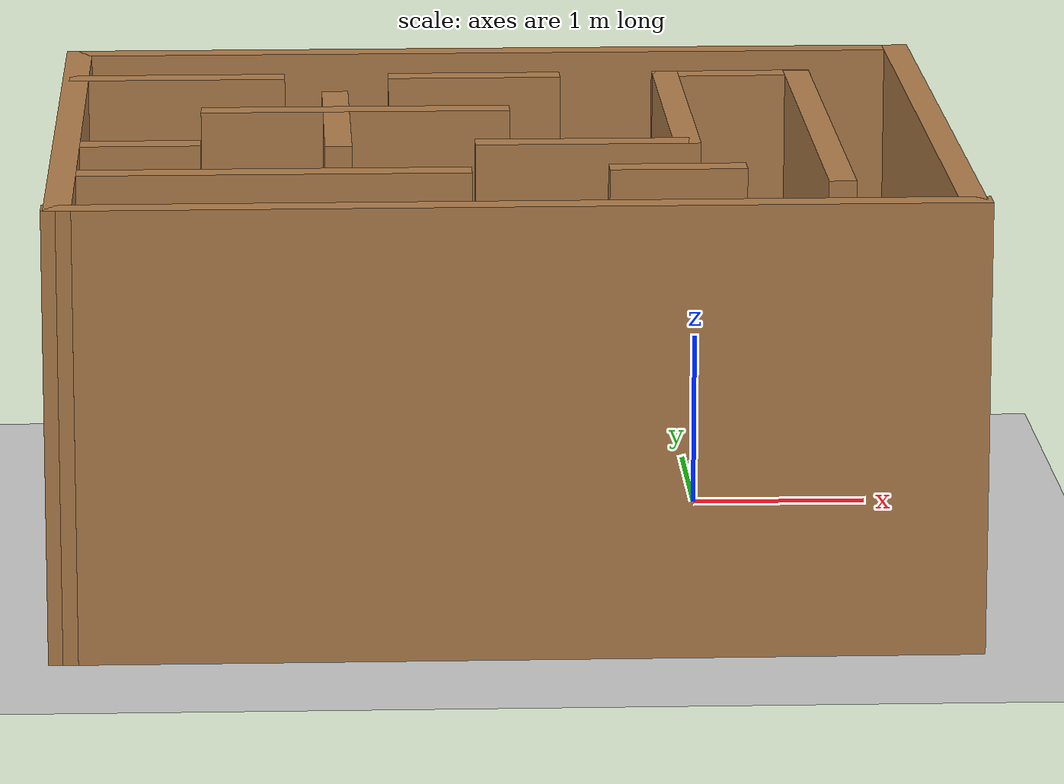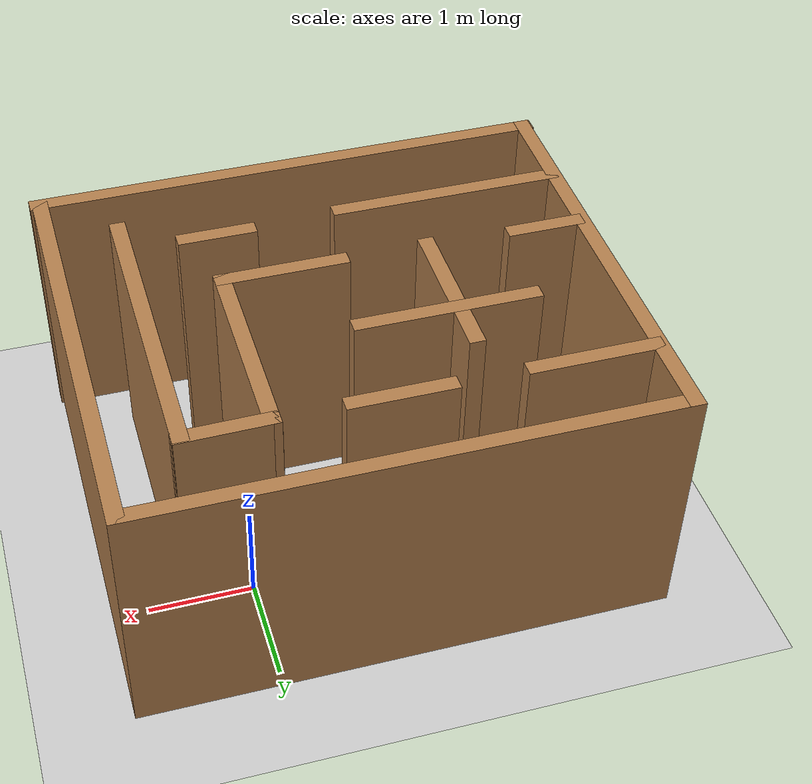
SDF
<sdf version="1.7">
 <world name="default">
  <scene><ambient>0.4 0.4 0.4 1</ambient><background>0.7 0.7 0.7 1</background><shadows>1</shadows></scene>
  <light name="sun" type="directional">
   <pose>0 0 10 0 -0 0</pose>
   <diffuse>0.8 0.8 0.8 1</diffuse>
   <specular>0.2 0.2 0.2 1</specular>
   <attenuation>
    <range>1000</range>
    <constant>0.9</constant>
    <linear>0.01</linear>
    <quadratic>0.001</quadratic>
   </attenuation>
   <direction>-0.5 0.1 -0.9</direction>
   <spot><inner_angle>0</inner_angle><outer_angle>0</outer_angle><falloff>0</falloff></spot>
  </light>
  <model name="ground_plane">
   <static>1</static>
   <link name="link">
    <collision name="collision">
     <geometry><plane><normal>0 0 1</normal><size>100 100</size></plane></geometry>
     <surface>
      <contact><collide_bitmask>65535</collide_bitmask></contact>
      <friction><ode><mu>100</mu><mu2>50</mu2></ode></friction>
     </surface>
    </collision>
    <visual name="visual">
     <cast_shadows>0</cast_shadows>
     <geometry><plane><normal>0 0 1</normal><size>100 100</size></plane></geometry>
     <material>
      <script><uri>file://media/materials/scripts/gazebo.material</uri><name>Gazebo/Grey</name></script>
     </material>
    </visual>
   </link>
  </model>
  <physics type="ode">
   <real_time_update_rate>1000</real_time_update_rate>
   <max_step_size>0.001</max_step_size>
   <real_time_factor>1</real_time_factor>
   <ode>
    <solver>
     <type>quick</type>
     <iters>150</iters>
     <precon_iters>0</precon_iters>
     <sor>1.4</sor>
     <use_dynamic_moi_rescaling>1</use_dynamic_moi_rescaling>
    </solver>
    <constraints>
     <cfm>1e-05</cfm>
     <erp>0.2</erp>
     <contact_max_correcting_vel>2000</contact_max_correcting_vel>
     <contact_surface_layer>0.01</contact_surface_layer>
    </constraints>
   </ode>
  </physics>
  <gravity>0 0 -9.8</gravity>
  <magnetic_field>6e-06 2.3e-05 -4.2e-05</magnetic_field>
  <atmosphere type="adiabatic"/>
  <spherical_coordinates>
   <surface_model>EARTH_WGS84</surface_model>
   <latitude_deg>0</latitude_deg>
   <longitude_deg>0</longitude_deg>
   <elevation>0</elevation>
   <heading_deg>0</heading_deg>
  </spherical_coordinates>
  <model name="TestMaze">
   <pose>-1.16718 -1.00605 0 0 -0 0</pose>
   <link name="Wall_13">
    <collision name="Wall_13_Collision">
     <geometry><box><size>5.04601 0.15 2.5</size></box></geometry>
     <pose>0 0 1.25 0 -0 0</pose>
    </collision>
    <visual name="Wall_13_Visual">
     <pose>0 0 1.25 0 -0 0</pose>
     <geometry><box><size>5.04601 0.15 2.5</size></box></geometry>
     <material>
      <script><uri>file://media/materials/scripts/gazebo.material</uri><name>Gazebo/Wood</name></script>
      <ambient>1 1 1 1</ambient>
     </material>
     <meta><layer>0</layer></meta>
    </visual>
    <pose>-0 -2.06913 0 0 -0 -3.13924</pose>
   </link>
   <link name="Wall_14">
    <collision name="Wall_14_Collision">
     <geometry><box><size>4.29951 0.15 2.5</size></box></geometry>
     <pose>0 0 1.25 0 -0 0</pose>
    </collision>
    <visual name="Wall_14_Visual">
     <pose>0 0 1.25 0 -0 0</pose>
     <geometry><box><size>4.29951 0.15 2.5</size></box></geometry>
     <material>
      <script><uri>file://media/materials/scripts/gazebo.material</uri><name>Gazebo/Wood</name></script>
      <ambient>1 1 1 1</ambient>
     </material>
     <meta><layer>0</layer></meta>
    </visual>
    <pose>-2.43075 -0.000159 0 0 -0 1.56803</pose>
   </link>
   <link name="Wall_21">
    <collision name="Wall_21_Collision">
     <geometry><box><size>1.25 0.15 2.5</size></box></geometry>
     <pose>0 0 1.25 0 -0 0</pose>
    </collision>
    <visual name="Wall_21_Visual">
     <pose>0 0 1.25 0 -0 0</pose>
     <geometry><box><size>1.25 0.15 2.5</size></box></geometry>
     <material>
      <script><uri>file://media/materials/scripts/gazebo.material</uri><name>Gazebo/Wood</name></script>
      <ambient>1 1 1 1</ambient>
     </material>
     <meta><layer>0</layer></meta>
    </visual>
    <pose>-1.83932 1.34296 0 0 -0 0</pose>
   </link>
   <link name="Wall_25">
    <collision name="Wall_25_Collision">
     <geometry><box><size>1 0.15 2.5</size></box></geometry>
     <pose>0 0 1.25 0 -0 0</pose>
    </collision>
    <visual name="Wall_25_Visual">
     <pose>0 0 1.25 0 -0 0</pose>
     <geometry><box><size>1 0.15 2.5</size></box></geometry>
     <material>
      <script><uri>file://media/materials/scripts/gazebo.material</uri><name>Gazebo/Wood</name></script>
      <ambient>1 1 1 1</ambient>
     </material>
     <meta><layer>0</layer></meta>
    </visual>
    <pose>-0.112824 1.34296 0 0 -0 0</pose>
   </link>
   <link name="Wall_27">
    <collision name="Wall_27_Collision">
     <geometry><box><size>0.9195 0.15 2.5</size></box></geometry>
     <pose>0 0 1.25 0 -0 0</pose>
    </collision>
    <visual name="Wall_27_Visual">
     <pose>0 0 1.25 0 -0 0</pose>
     <geometry><box><size>0.9195 0.15 2.5</size></box></geometry>
     <material>
      <script><uri>file://media/materials/scripts/gazebo.material</uri><name>Gazebo/Wood</name></script>
      <ambient>1 1 1 1</ambient>
     </material>
     <meta><layer>0</layer></meta>
    </visual>
    <pose>1.38793 1.34871 0 0 -0 0.014944</pose>
   </link>
   <link name="Wall_29">
    <collision name="Wall_29_Collision">
     <geometry><box><size>3 0.15 2.5</size></box></geometry>
     <pose>0 0 1.25 0 -0 0</pose>
    </collision>
    <visual name="Wall_29_Visual">
     <pose>0 0 1.25 0 -0 0</pose>
     <geometry><box><size>3 0.15 2.5</size></box></geometry>
     <material>
      <script><uri>file://media/materials/scripts/gazebo.material</uri><name>Gazebo/Wood</name></script>
      <ambient>1 1 1 1</ambient>
     </material>
     <meta><layer>0</layer></meta>
    </visual>
    <pose>1.77268 -0.082043 0 0 -0 -1.5708</pose>
   </link>
   <link name="Wall_31">
    <collision name="Wall_31_Collision">
     <geometry><box><size>2 0.15 2.5</size></box></geometry>
     <pose>0 0 1.25 0 -0 0</pose>
    </collision>
    <visual name="Wall_31_Visual">
     <pose>0 0 1.25 0 -0 0</pose>
     <geometry><box><size>2 0.15 2.5</size></box></geometry>
     <material>
      <script><uri>file://media/materials/scripts/gazebo.material</uri><name>Gazebo/Wood</name></script>
      <ambient>1 1 1 1</ambient>
     </material>
     <meta><layer>0</layer></meta>
    </visual>
    <pose>1.00318 0.417957 0 0 -0 -1.5708</pose>
   </link>
   <link name="Wall_38">
    <collision name="Wall_38_Collision">
     <geometry><box><size>1.5 0.15 2.5</size></box></geometry>
     <pose>0 0 1.25 0 -0 0</pose>
    </collision>
    <visual name="Wall_38_Visual">
     <pose>0 0 1.25 0 -0 0</pose>
     <geometry><box><size>1.5 0.15 2.5</size></box></geometry>
     <material>
      <script><uri>file://media/materials/scripts/gazebo.material</uri><name>Gazebo/Wood</name></script>
      <ambient>1 1 1 1</ambient>
     </material>
     <meta><layer>0</layer></meta>
    </visual>
    <pose>-0.928824 0.161957 0 0 -0 -1.5708</pose>
   </link>
   <link name="Wall_40">
    <collision name="Wall_40_Collision">
     <geometry><box><size>1.75 0.15 2.5</size></box></geometry>
     <pose>0 0 1.25 0 -0 0</pose>
    </collision>
    <visual name="Wall_40_Visual">
     <pose>0 0 1.25 0 -0 0</pose>
     <geometry><box><size>1.75 0.15 2.5</size></box></geometry>
     <material>
      <script><uri>file://media/materials/scripts/gazebo.material</uri><name>Gazebo/Wood</name></script>
      <ambient>1 1 1 1</ambient>
     </material>
     <meta><layer>0</layer></meta>
    </visual>
    <pose>-0.818824 0.411457 0 0 -0 0</pose>
   </link>
   <link name="Wall_44">
    <collision name="Wall_44_Collision">
     <geometry><box><size>0.75 0.15 2.5</size></box></geometry>
     <pose>0 0 1.25 0 -0 0</pose>
    </collision>
    <visual name="Wall_44_Visual">
     <pose>0 0 1.25 0 -0 0</pose>
     <geometry><box><size>0.75 0.15 2.5</size></box></geometry>
     <material>
      <script><uri>file://media/materials/scripts/gazebo.material</uri><name>Gazebo/Wood</name></script>
      <ambient>1 1 1 1</ambient>
     </material>
     <meta><layer>0</layer></meta>
    </visual>
    <pose>-2.06632 -0.474043 0 0 -0 0</pose>
   </link>
   <link name="Wall_46">
    <collision name="Wall_46_Collision">
     <geometry><box><size>1.25 0.15 2.5</size></box></geometry>
     <pose>0 0 1.25 0 -0 0</pose>
    </collision>
    <visual name="Wall_46_Visual">
     <pose>0 0 1.25 0 -0 0</pose>
     <geometry><box><size>1.25 0.15 2.5</size></box></geometry>
     <material>
      <script><uri>file://media/materials/scripts/gazebo.material</uri><name>Gazebo/Wood</name></script>
      <ambient>1 1 1 1</ambient>
     </material>
     <meta><layer>0</layer></meta>
    </visual>
    <pose>0.453176 -0.507043 0 0 -0 3.14159</pose>
   </link>
   <link name="Wall_48">
    <collision name="Wall_48_Collision">
     <geometry><box><size>2.25 0.15 2.5</size></box></geometry>
     <pose>0 0 1.25 0 -0 0</pose>
    </collision>
    <visual name="Wall_48_Visual">
     <pose>0 0 1.25 0 -0 0</pose>
     <geometry><box><size>2.25 0.15 2.5</size></box></geometry>
     <material>
      <script><uri>file://media/materials/scripts/gazebo.material</uri><name>Gazebo/Wood</name></script>
      <ambient>1 1 1 1</ambient>
     </material>
     <meta><layer>0</layer></meta>
    </visual>
    <pose>-1.33932 -1.22154 0 0 -0 0</pose>
   </link>
   <link name="Wall_51">
    <collision name="Wall_51_Collision">
     <geometry><box><size>0.75 0.15 2.5</size></box></geometry>
     <pose>0 0 1.25 0 -0 0</pose>
    </collision>
    <visual name="Wall_51_Visual">
     <pose>0 0 1.25 0 -0 0</pose>
     <geometry><box><size>0.75 0.15 2.5</size></box></geometry>
     <material>
      <script><uri>file://media/materials/scripts/gazebo.material</uri><name>Gazebo/Wood</name></script>
      <ambient>1 1 1 1</ambient>
     </material>
     <meta><layer>0</layer></meta>
    </visual>
    <pose>0.910176 -1.17554 0 0 -0 3.14159</pose>
   </link>
   <link name="Wall_8">
    <collision name="Wall_8_Collision">
     <geometry><box><size>5 0.15 2.5</size></box></geometry>
     <pose>0 0 1.25 0 -0 0</pose>
    </collision>
    <visual name="Wall_8_Visual">
     <pose>0 0 1.25 0 -0 0</pose>
     <geometry><box><size>5 0.15 2.5</size></box></geometry>
     <material>
      <script><uri>file://media/materials/scripts/gazebo.material</uri><name>Gazebo/Wood</name></script>
      <ambient>1 1 1 1</ambient>
     </material>
     <meta><layer>0</layer></meta>
    </visual>
    <pose>-0 2.07512 0 0 -0 0</pose>
   </link>
   <link name="Wall_9">
    <collision name="Wall_9_Collision">
     <geometry><box><size>4.25 0.15 2.5</size></box></geometry>
     <pose>0 0 1.25 0 -0 0</pose>
    </collision>
    <visual name="Wall_9_Visual">
     <pose>0 0 1.25 0 -0 0</pose>
     <geometry><box><size>4.25 0.15 2.5</size></box></geometry>
     <material>
      <script><uri>file://media/materials/scripts/gazebo.material</uri><name>Gazebo/Wood</name></script>
      <ambient>1 1 1 1</ambient>
     </material>
     <meta><layer>0</layer></meta>
    </visual>
    <pose>2.425 0.025116 0 0 -0 -1.5708</pose>
   </link>
   <static>1</static>
  </model>
 </world>
</sdf>
